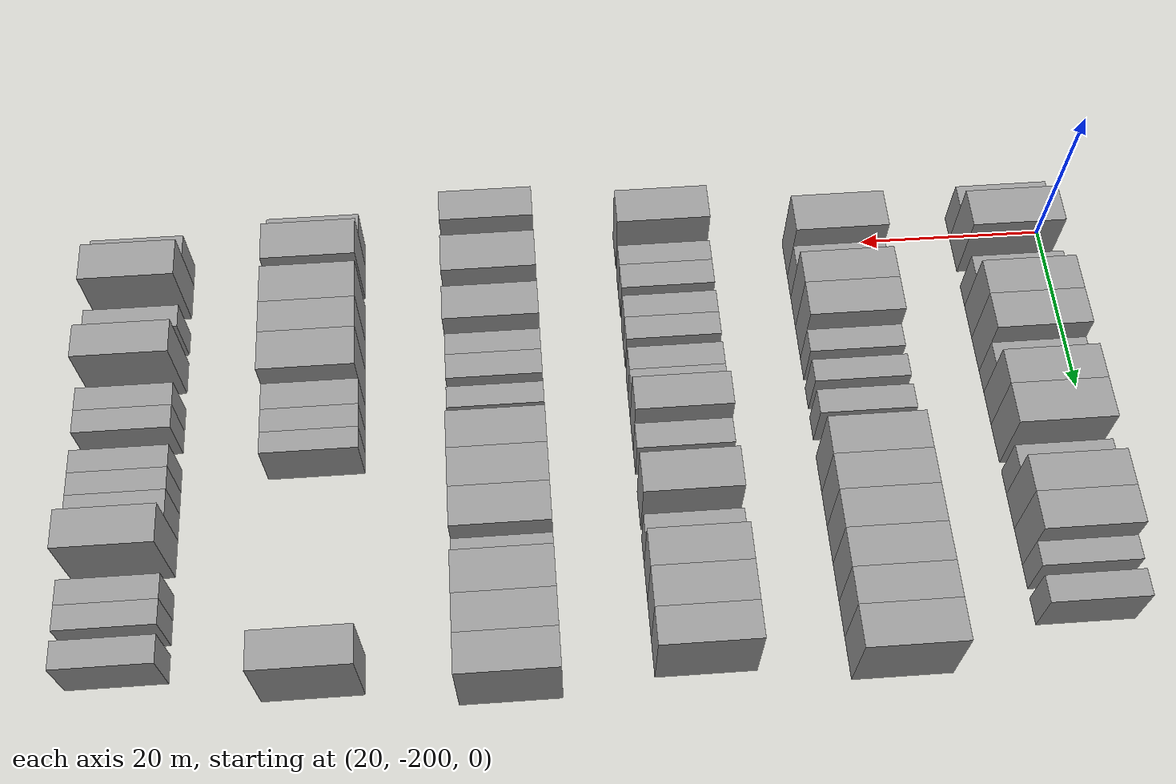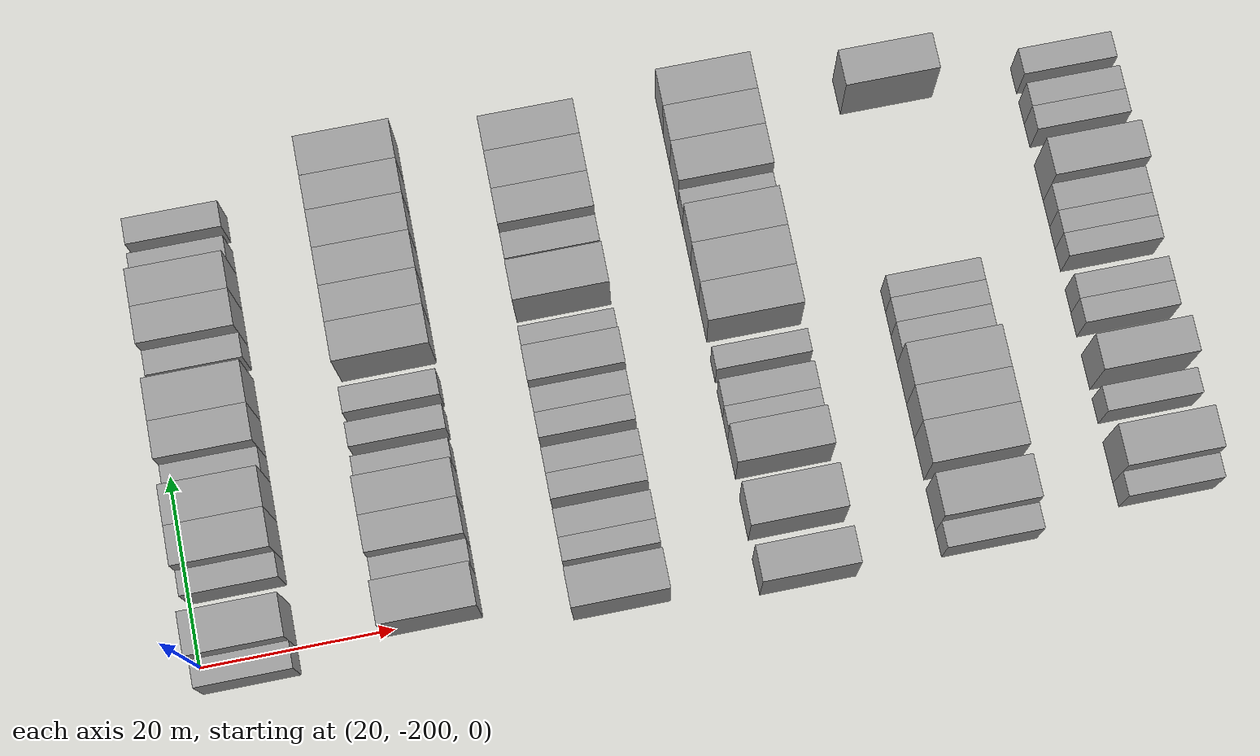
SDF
<sdf version="1.6">
 <world name="default">
  <model name="building_37">
   <static>1</static>
   <pose>25.0000 -201.2684 0 0.000000 0.000000 0.000000</pose>
   <link name="link">
    <pose>0 0 3.00 0 0 0</pose>
    <collision name="collision"><geometry><box><size>10.0000 2.8138 6.0000</size></box></geometry></collision>
    <visual name="visual">
     <cast_shadows>0</cast_shadows>
     <geometry><box><size>10.0000 2.8138 6.0000</size></box></geometry>
     <material>
      <script>
       <uri>model://grey_wall/materials/scripts</uri>
       <uri>model://grey_wall/materials/textures</uri>
       <name>vrc/grey_wall</name>
      </script>
     </material>
    </visual>
   </link>
  </model>
  <model name="building_38">
   <static>1</static>
   <pose>25.0000 -197.6301 0 0.000000 0.000000 0.000000</pose>
   <link name="link">
    <pose>0 0 4.50 0 0 0</pose>
    <collision name="collision"><geometry><box><size>10.0000 4.4629 9.0000</size></box></geometry></collision>
    <visual name="visual">
     <cast_shadows>0</cast_shadows>
     <geometry><box><size>10.0000 4.4629 9.0000</size></box></geometry>
     <material>
      <script>
       <uri>model://grey_wall/materials/scripts</uri>
       <uri>model://grey_wall/materials/textures</uri>
       <name>vrc/grey_wall</name>
      </script>
     </material>
    </visual>
   </link>
  </model>
  <model name="building_39">
   <static>1</static>
   <pose>25.0000 -192.0988 0 0.000000 0.000000 0.000000</pose>
   <link name="link">
    <pose>0 0 3.00 0 0 0</pose>
    <collision name="collision"><geometry><box><size>10.0000 2.5997 6.0000</size></box></geometry></collision>
    <visual name="visual">
     <cast_shadows>0</cast_shadows>
     <geometry><box><size>10.0000 2.5997 6.0000</size></box></geometry>
     <material>
      <script>
       <uri>model://grey_wall/materials/scripts</uri>
       <uri>model://grey_wall/materials/textures</uri>
       <name>vrc/grey_wall</name>
      </script>
     </material>
    </visual>
   </link>
  </model>
  <model name="building_40">
   <static>1</static>
   <pose>25.0000 -188.7515 0 0.000000 0.000000 0.000000</pose>
   <link name="link">
    <pose>0 0 4.50 0 0 0</pose>
    <collision name="collision"><geometry><box><size>10.0000 4.0948 9.0000</size></box></geometry></collision>
    <visual name="visual">
     <cast_shadows>0</cast_shadows>
     <geometry><box><size>10.0000 4.0948 9.0000</size></box></geometry>
     <material>
      <script>
       <uri>model://grey_wall/materials/scripts</uri>
       <uri>model://grey_wall/materials/textures</uri>
       <name>vrc/grey_wall</name>
      </script>
     </material>
    </visual>
   </link>
  </model>
  <model name="building_41">
   <static>1</static>
   <pose>25.0000 -184.6047 0 0.000000 0.000000 0.000000</pose>
   <link name="link">
    <pose>0 0 4.50 0 0 0</pose>
    <collision name="collision"><geometry><box><size>10.0000 4.1988 9.0000</size></box></geometry></collision>
    <visual name="visual">
     <cast_shadows>0</cast_shadows>
     <geometry><box><size>10.0000 4.1988 9.0000</size></box></geometry>
     <material>
      <script>
       <uri>model://grey_wall/materials/scripts</uri>
       <uri>model://grey_wall/materials/textures</uri>
       <name>vrc/grey_wall</name>
      </script>
     </material>
    </visual>
   </link>
  </model>
  <model name="building_42">
   <static>1</static>
   <pose>25.0000 -181.1895 0 0.000000 0.000000 0.000000</pose>
   <link name="link">
    <pose>0 0 3.00 0 0 0</pose>
    <collision name="collision"><geometry><box><size>10.0000 2.6315 6.0000</size></box></geometry></collision>
    <visual name="visual">
     <cast_shadows>0</cast_shadows>
     <geometry><box><size>10.0000 2.6315 6.0000</size></box></geometry>
     <material>
      <script>
       <uri>model://grey_wall/materials/scripts</uri>
       <uri>model://grey_wall/materials/textures</uri>
       <name>vrc/grey_wall</name>
      </script>
     </material>
    </visual>
   </link>
  </model>
  <model name="building_43">
   <static>1</static>
   <pose>25.0000 -177.9051 0 0.000000 0.000000 0.000000</pose>
   <link name="link">
    <pose>0 0 4.50 0 0 0</pose>
    <collision name="collision"><geometry><box><size>10.0000 3.9375 9.0000</size></box></geometry></collision>
    <visual name="visual">
     <cast_shadows>0</cast_shadows>
     <geometry><box><size>10.0000 3.9375 9.0000</size></box></geometry>
     <material>
      <script>
       <uri>model://grey_wall/materials/scripts</uri>
       <uri>model://grey_wall/materials/textures</uri>
       <name>vrc/grey_wall</name>
      </script>
     </material>
    </visual>
   </link>
  </model>
  <model name="building_44">
   <static>1</static>
   <pose>25.0000 -173.6956 0 0.000000 0.000000 0.000000</pose>
   <link name="link">
    <pose>0 0 4.50 0 0 0</pose>
    <collision name="collision"><geometry><box><size>10.0000 4.4815 9.0000</size></box></geometry></collision>
    <visual name="visual">
     <cast_shadows>0</cast_shadows>
     <geometry><box><size>10.0000 4.4815 9.0000</size></box></geometry>
     <material>
      <script>
       <uri>model://grey_wall/materials/scripts</uri>
       <uri>model://grey_wall/materials/textures</uri>
       <name>vrc/grey_wall</name>
      </script>
     </material>
    </visual>
   </link>
  </model>
  <model name="building_45">
   <static>1</static>
   <pose>25.0000 -169.1387 0 0.000000 0.000000 0.000000</pose>
   <link name="link">
    <pose>0 0 3.00 0 0 0</pose>
    <collision name="collision"><geometry><box><size>10.0000 2.6322 6.0000</size></box></geometry></collision>
    <visual name="visual">
     <cast_shadows>0</cast_shadows>
     <geometry><box><size>10.0000 2.6322 6.0000</size></box></geometry>
     <material>
      <script>
       <uri>model://grey_wall/materials/scripts</uri>
       <uri>model://grey_wall/materials/textures</uri>
       <name>vrc/grey_wall</name>
      </script>
     </material>
    </visual>
   </link>
  </model>
  <model name="building_46">
   <static>1</static>
   <pose>25.0000 -165.8523 0 0.000000 0.000000 0.000000</pose>
   <link name="link">
    <pose>0 0 4.50 0 0 0</pose>
    <collision name="collision"><geometry><box><size>10.0000 3.9406 9.0000</size></box></geometry></collision>
    <visual name="visual">
     <cast_shadows>0</cast_shadows>
     <geometry><box><size>10.0000 3.9406 9.0000</size></box></geometry>
     <material>
      <script>
       <uri>model://grey_wall/materials/scripts</uri>
       <uri>model://grey_wall/materials/textures</uri>
       <name>vrc/grey_wall</name>
      </script>
     </material>
    </visual>
   </link>
  </model>
  <model name="building_47">
   <static>1</static>
   <pose>25.0000 -161.8768 0 0.000000 0.000000 0.000000</pose>
   <link name="link">
    <pose>0 0 4.50 0 0 0</pose>
    <collision name="collision"><geometry><box><size>10.0000 4.0105 9.0000</size></box></geometry></collision>
    <visual name="visual">
     <cast_shadows>0</cast_shadows>
     <geometry><box><size>10.0000 4.0105 9.0000</size></box></geometry>
     <material>
      <script>
       <uri>model://grey_wall/materials/scripts</uri>
       <uri>model://grey_wall/materials/textures</uri>
       <name>vrc/grey_wall</name>
      </script>
     </material>
    </visual>
   </link>
  </model>
  <model name="building_48">
   <static>1</static>
   <pose>25.0000 -158.6008 0 0.000000 0.000000 0.000000</pose>
   <link name="link">
    <pose>0 0 3.00 0 0 0</pose>
    <collision name="collision"><geometry><box><size>10.0000 2.5414 6.0000</size></box></geometry></collision>
    <visual name="visual">
     <cast_shadows>0</cast_shadows>
     <geometry><box><size>10.0000 2.5414 6.0000</size></box></geometry>
     <material>
      <script>
       <uri>model://grey_wall/materials/scripts</uri>
       <uri>model://grey_wall/materials/textures</uri>
       <name>vrc/grey_wall</name>
      </script>
     </material>
    </visual>
   </link>
  </model>
  <model name="building_49">
   <static>1</static>
   <pose>25.0000 -154.9252 0 0.000000 0.000000 0.000000</pose>
   <link name="link">
    <pose>0 0 3.00 0 0 0</pose>
    <collision name="collision"><geometry><box><size>10.0000 2.8098 6.0000</size></box></geometry></collision>
    <visual name="visual">
     <cast_shadows>0</cast_shadows>
     <geometry><box><size>10.0000 2.8098 6.0000</size></box></geometry>
     <material>
      <script>
       <uri>model://grey_wall/materials/scripts</uri>
       <uri>model://grey_wall/materials/textures</uri>
       <name>vrc/grey_wall</name>
      </script>
     </material>
    </visual>
   </link>
  </model>
  <model name="building_213">
   <static>1</static>
   <pose>44.0000 -198.2995 0 0.000000 0.000000 0.000000</pose>
   <link name="link">
    <pose>0 0 4.50 0 0 0</pose>
    <collision name="collision"><geometry><box><size>10.0000 4.4724 9.0000</size></box></geometry></collision>
    <visual name="visual">
     <cast_shadows>0</cast_shadows>
     <geometry><box><size>10.0000 4.4724 9.0000</size></box></geometry>
     <material>
      <script>
       <uri>model://grey_wall/materials/scripts</uri>
       <uri>model://grey_wall/materials/textures</uri>
       <name>vrc/grey_wall</name>
      </script>
     </material>
    </visual>
   </link>
  </model>
  <model name="building_214">
   <static>1</static>
   <pose>44.0000 -194.6533 0 0.000000 0.000000 0.000000</pose>
   <link name="link">
    <pose>0 0 3.00 0 0 0</pose>
    <collision name="collision"><geometry><box><size>10.0000 2.8201 6.0000</size></box></geometry></collision>
    <visual name="visual">
     <cast_shadows>0</cast_shadows>
     <geometry><box><size>10.0000 2.8201 6.0000</size></box></geometry>
     <material>
      <script>
       <uri>model://grey_wall/materials/scripts</uri>
       <uri>model://grey_wall/materials/textures</uri>
       <name>vrc/grey_wall</name>
      </script>
     </material>
    </visual>
   </link>
  </model>
  <model name="building_215">
   <static>1</static>
   <pose>44.0000 -191.3345 0 0.000000 0.000000 0.000000</pose>
   <link name="link">
    <pose>0 0 4.50 0 0 0</pose>
    <collision name="collision"><geometry><box><size>10.0000 3.8174 9.0000</size></box></geometry></collision>
    <visual name="visual">
     <cast_shadows>0</cast_shadows>
     <geometry><box><size>10.0000 3.8174 9.0000</size></box></geometry>
     <material>
      <script>
       <uri>model://grey_wall/materials/scripts</uri>
       <uri>model://grey_wall/materials/textures</uri>
       <name>vrc/grey_wall</name>
      </script>
     </material>
    </visual>
   </link>
  </model>
  <model name="building_216">
   <static>1</static>
   <pose>44.0000 -187.4266 0 0.000000 0.000000 0.000000</pose>
   <link name="link">
    <pose>0 0 4.50 0 0 0</pose>
    <collision name="collision"><geometry><box><size>10.0000 3.9984 9.0000</size></box></geometry></collision>
    <visual name="visual">
     <cast_shadows>0</cast_shadows>
     <geometry><box><size>10.0000 3.9984 9.0000</size></box></geometry>
     <material>
      <script>
       <uri>model://grey_wall/materials/scripts</uri>
       <uri>model://grey_wall/materials/textures</uri>
       <name>vrc/grey_wall</name>
      </script>
     </material>
    </visual>
   </link>
  </model>
  <model name="building_217">
   <static>1</static>
   <pose>44.0000 -184.1020 0 0.000000 0.000000 0.000000</pose>
   <link name="link">
    <pose>0 0 3.00 0 0 0</pose>
    <collision name="collision"><geometry><box><size>10.0000 2.6508 6.0000</size></box></geometry></collision>
    <visual name="visual">
     <cast_shadows>0</cast_shadows>
     <geometry><box><size>10.0000 2.6508 6.0000</size></box></geometry>
     <material>
      <script>
       <uri>model://grey_wall/materials/scripts</uri>
       <uri>model://grey_wall/materials/textures</uri>
       <name>vrc/grey_wall</name>
      </script>
     </material>
    </visual>
   </link>
  </model>
  <model name="building_218">
   <static>1</static>
   <pose>44.0000 -180.4917 0 0.000000 0.000000 0.000000</pose>
   <link name="link">
    <pose>0 0 3.00 0 0 0</pose>
    <collision name="collision"><geometry><box><size>10.0000 2.5696 6.0000</size></box></geometry></collision>
    <visual name="visual">
     <cast_shadows>0</cast_shadows>
     <geometry><box><size>10.0000 2.5696 6.0000</size></box></geometry>
     <material>
      <script>
       <uri>model://grey_wall/materials/scripts</uri>
       <uri>model://grey_wall/materials/textures</uri>
       <name>vrc/grey_wall</name>
      </script>
     </material>
    </visual>
   </link>
  </model>
  <model name="building_219">
   <static>1</static>
   <pose>44.0000 -176.8438 0 0.000000 0.000000 0.000000</pose>
   <link name="link">
    <pose>0 0 3.00 0 0 0</pose>
    <collision name="collision"><geometry><box><size>10.0000 2.7263 6.0000</size></box></geometry></collision>
    <visual name="visual">
     <cast_shadows>0</cast_shadows>
     <geometry><box><size>10.0000 2.7263 6.0000</size></box></geometry>
     <material>
      <script>
       <uri>model://grey_wall/materials/scripts</uri>
       <uri>model://grey_wall/materials/textures</uri>
       <name>vrc/grey_wall</name>
      </script>
     </material>
    </visual>
   </link>
  </model>
  <model name="building_220">
   <static>1</static>
   <pose>44.0000 -171.3957 0 0.000000 0.000000 0.000000</pose>
   <link name="link">
    <pose>0 0 4.50 0 0 0</pose>
    <collision name="collision"><geometry><box><size>10.0000 4.1698 9.0000</size></box></geometry></collision>
    <visual name="visual">
     <cast_shadows>0</cast_shadows>
     <geometry><box><size>10.0000 4.1698 9.0000</size></box></geometry>
     <material>
      <script>
       <uri>model://grey_wall/materials/scripts</uri>
       <uri>model://grey_wall/materials/textures</uri>
       <name>vrc/grey_wall</name>
      </script>
     </material>
    </visual>
   </link>
  </model>
  <model name="building_221">
   <static>1</static>
   <pose>44.0000 -167.3789 0 0.000000 0.000000 0.000000</pose>
   <link name="link">
    <pose>0 0 4.50 0 0 0</pose>
    <collision name="collision"><geometry><box><size>10.0000 3.8640 9.0000</size></box></geometry></collision>
    <visual name="visual">
     <cast_shadows>0</cast_shadows>
     <geometry><box><size>10.0000 3.8640 9.0000</size></box></geometry>
     <material>
      <script>
       <uri>model://grey_wall/materials/scripts</uri>
       <uri>model://grey_wall/materials/textures</uri>
       <name>vrc/grey_wall</name>
      </script>
     </material>
    </visual>
   </link>
  </model>
  <model name="building_222">
   <static>1</static>
   <pose>44.0000 -163.4133 0 0.000000 0.000000 0.000000</pose>
   <link name="link">
    <pose>0 0 4.50 0 0 0</pose>
    <collision name="collision"><geometry><box><size>10.0000 4.0671 9.0000</size></box></geometry></collision>
    <visual name="visual">
     <cast_shadows>0</cast_shadows>
     <geometry><box><size>10.0000 4.0671 9.0000</size></box></geometry>
     <material>
      <script>
       <uri>model://grey_wall/materials/scripts</uri>
       <uri>model://grey_wall/materials/textures</uri>
       <name>vrc/grey_wall</name>
      </script>
     </material>
    </visual>
   </link>
  </model>
  <model name="building_223">
   <static>1</static>
   <pose>44.0000 -159.3458 0 0.000000 0.000000 0.000000</pose>
   <link name="link">
    <pose>0 0 4.50 0 0 0</pose>
    <collision name="collision"><geometry><box><size>10.0000 4.0679 9.0000</size></box></geometry></collision>
    <visual name="visual">
     <cast_shadows>0</cast_shadows>
     <geometry><box><size>10.0000 4.0679 9.0000</size></box></geometry>
     <material>
      <script>
       <uri>model://grey_wall/materials/scripts</uri>
       <uri>model://grey_wall/materials/textures</uri>
       <name>vrc/grey_wall</name>
      </script>
     </material>
    </visual>
   </link>
  </model>
  <model name="building_224">
   <static>1</static>
   <pose>44.0000 -155.4281 0 0.000000 0.000000 0.000000</pose>
   <link name="link">
    <pose>0 0 4.50 0 0 0</pose>
    <collision name="collision"><geometry><box><size>10.0000 3.7675 9.0000</size></box></geometry></collision>
    <visual name="visual">
     <cast_shadows>0</cast_shadows>
     <geometry><box><size>10.0000 3.7675 9.0000</size></box></geometry>
     <material>
      <script>
       <uri>model://grey_wall/materials/scripts</uri>
       <uri>model://grey_wall/materials/textures</uri>
       <name>vrc/grey_wall</name>
      </script>
     </material>
    </visual>
   </link>
  </model>
  <model name="building_225">
   <static>1</static>
   <pose>44.0000 -151.3949 0 0.000000 0.000000 0.000000</pose>
   <link name="link">
    <pose>0 0 4.50 0 0 0</pose>
    <collision name="collision"><geometry><box><size>10.0000 4.2988 9.0000</size></box></geometry></collision>
    <visual name="visual">
     <cast_shadows>0</cast_shadows>
     <geometry><box><size>10.0000 4.2988 9.0000</size></box></geometry>
     <material>
      <script>
       <uri>model://grey_wall/materials/scripts</uri>
       <uri>model://grey_wall/materials/textures</uri>
       <name>vrc/grey_wall</name>
      </script>
     </material>
    </visual>
   </link>
  </model>
  <model name="building_388">
   <static>1</static>
   <pose>63.0000 -200.5360 0 0.000000 0.000000 0.000000</pose>
   <link name="link">
    <pose>0 0 4.50 0 0 0</pose>
    <collision name="collision"><geometry><box><size>10.0000 4.1398 9.0000</size></box></geometry></collision>
    <visual name="visual">
     <cast_shadows>0</cast_shadows>
     <geometry><box><size>10.0000 4.1398 9.0000</size></box></geometry>
     <material>
      <script>
       <uri>model://grey_wall/materials/scripts</uri>
       <uri>model://grey_wall/materials/textures</uri>
       <name>vrc/grey_wall</name>
      </script>
     </material>
    </visual>
   </link>
  </model>
  <model name="building_389">
   <static>1</static>
   <pose>63.0000 -196.2243 0 0.000000 0.000000 0.000000</pose>
   <link name="link">
    <pose>0 0 3.00 0 0 0</pose>
    <collision name="collision"><geometry><box><size>10.0000 2.4836 6.0000</size></box></geometry></collision>
    <visual name="visual">
     <cast_shadows>0</cast_shadows>
     <geometry><box><size>10.0000 2.4836 6.0000</size></box></geometry>
     <material>
      <script>
       <uri>model://grey_wall/materials/scripts</uri>
       <uri>model://grey_wall/materials/textures</uri>
       <name>vrc/grey_wall</name>
      </script>
     </material>
    </visual>
   </link>
  </model>
  <model name="building_390">
   <static>1</static>
   <pose>63.0000 -193.5029 0 0.000000 0.000000 0.000000</pose>
   <link name="link">
    <pose>0 0 3.00 0 0 0</pose>
    <collision name="collision"><geometry><box><size>10.0000 2.9592 6.0000</size></box></geometry></collision>
    <visual name="visual">
     <cast_shadows>0</cast_shadows>
     <geometry><box><size>10.0000 2.9592 6.0000</size></box></geometry>
     <material>
      <script>
       <uri>model://grey_wall/materials/scripts</uri>
       <uri>model://grey_wall/materials/textures</uri>
       <name>vrc/grey_wall</name>
      </script>
     </material>
    </visual>
   </link>
  </model>
  <model name="building_391">
   <static>1</static>
   <pose>63.0000 -189.6736 0 0.000000 0.000000 0.000000</pose>
   <link name="link">
    <pose>0 0 3.00 0 0 0</pose>
    <collision name="collision"><geometry><box><size>10.0000 2.6993 6.0000</size></box></geometry></collision>
    <visual name="visual">
     <cast_shadows>0</cast_shadows>
     <geometry><box><size>10.0000 2.6993 6.0000</size></box></geometry>
     <material>
      <script>
       <uri>model://grey_wall/materials/scripts</uri>
       <uri>model://grey_wall/materials/textures</uri>
       <name>vrc/grey_wall</name>
      </script>
     </material>
    </visual>
   </link>
  </model>
  <model name="building_392">
   <static>1</static>
   <pose>63.0000 -186.9709 0 0.000000 0.000000 0.000000</pose>
   <link name="link">
    <pose>0 0 3.00 0 0 0</pose>
    <collision name="collision"><geometry><box><size>10.0000 2.7061 6.0000</size></box></geometry></collision>
    <visual name="visual">
     <cast_shadows>0</cast_shadows>
     <geometry><box><size>10.0000 2.7061 6.0000</size></box></geometry>
     <material>
      <script>
       <uri>model://grey_wall/materials/scripts</uri>
       <uri>model://grey_wall/materials/textures</uri>
       <name>vrc/grey_wall</name>
      </script>
     </material>
    </visual>
   </link>
  </model>
  <model name="building_393">
   <static>1</static>
   <pose>63.0000 -183.2868 0 0.000000 0.000000 0.000000</pose>
   <link name="link">
    <pose>0 0 3.00 0 0 0</pose>
    <collision name="collision"><geometry><box><size>10.0000 2.6621 6.0000</size></box></geometry></collision>
    <visual name="visual">
     <cast_shadows>0</cast_shadows>
     <geometry><box><size>10.0000 2.6621 6.0000</size></box></geometry>
     <material>
      <script>
       <uri>model://grey_wall/materials/scripts</uri>
       <uri>model://grey_wall/materials/textures</uri>
       <name>vrc/grey_wall</name>
      </script>
     </material>
    </visual>
   </link>
  </model>
  <model name="building_394">
   <static>1</static>
   <pose>63.0000 -180.6456 0 0.000000 0.000000 0.000000</pose>
   <link name="link">
    <pose>0 0 3.00 0 0 0</pose>
    <collision name="collision"><geometry><box><size>10.0000 2.6202 6.0000</size></box></geometry></collision>
    <visual name="visual">
     <cast_shadows>0</cast_shadows>
     <geometry><box><size>10.0000 2.6202 6.0000</size></box></geometry>
     <material>
      <script>
       <uri>model://grey_wall/materials/scripts</uri>
       <uri>model://grey_wall/materials/textures</uri>
       <name>vrc/grey_wall</name>
      </script>
     </material>
    </visual>
   </link>
  </model>
  <model name="building_395">
   <static>1</static>
   <pose>63.0000 -177.4689 0 0.000000 0.000000 0.000000</pose>
   <link name="link">
    <pose>0 0 4.50 0 0 0</pose>
    <collision name="collision"><geometry><box><size>10.0000 3.7332 9.0000</size></box></geometry></collision>
    <visual name="visual">
     <cast_shadows>0</cast_shadows>
     <geometry><box><size>10.0000 3.7332 9.0000</size></box></geometry>
     <material>
      <script>
       <uri>model://grey_wall/materials/scripts</uri>
       <uri>model://grey_wall/materials/textures</uri>
       <name>vrc/grey_wall</name>
      </script>
     </material>
    </visual>
   </link>
  </model>
  <model name="building_396">
   <static>1</static>
   <pose>63.0000 -174.1981 0 0.000000 0.000000 0.000000</pose>
   <link name="link">
    <pose>0 0 3.00 0 0 0</pose>
    <collision name="collision"><geometry><box><size>10.0000 2.8084 6.0000</size></box></geometry></collision>
    <visual name="visual">
     <cast_shadows>0</cast_shadows>
     <geometry><box><size>10.0000 2.8084 6.0000</size></box></geometry>
     <material>
      <script>
       <uri>model://grey_wall/materials/scripts</uri>
       <uri>model://grey_wall/materials/textures</uri>
       <name>vrc/grey_wall</name>
      </script>
     </material>
    </visual>
   </link>
  </model>
  <model name="building_397">
   <static>1</static>
   <pose>63.0000 -168.6347 0 0.000000 0.000000 0.000000</pose>
   <link name="link">
    <pose>0 0 4.50 0 0 0</pose>
    <collision name="collision"><geometry><box><size>10.0000 4.3183 9.0000</size></box></geometry></collision>
    <visual name="visual">
     <cast_shadows>0</cast_shadows>
     <geometry><box><size>10.0000 4.3183 9.0000</size></box></geometry>
     <material>
      <script>
       <uri>model://grey_wall/materials/scripts</uri>
       <uri>model://grey_wall/materials/textures</uri>
       <name>vrc/grey_wall</name>
      </script>
     </material>
    </visual>
   </link>
  </model>
  <model name="building_398">
   <static>1</static>
   <pose>63.0000 -164.0449 0 0.000000 0.000000 0.000000</pose>
   <link name="link">
    <pose>0 0 3.00 0 0 0</pose>
    <collision name="collision"><geometry><box><size>10.0000 2.8614 6.0000</size></box></geometry></collision>
    <visual name="visual">
     <cast_shadows>0</cast_shadows>
     <geometry><box><size>10.0000 2.8614 6.0000</size></box></geometry>
     <material>
      <script>
       <uri>model://grey_wall/materials/scripts</uri>
       <uri>model://grey_wall/materials/textures</uri>
       <name>vrc/grey_wall</name>
      </script>
     </material>
    </visual>
   </link>
  </model>
  <model name="building_399">
   <static>1</static>
   <pose>63.0000 -160.6847 0 0.000000 0.000000 0.000000</pose>
   <link name="link">
    <pose>0 0 4.50 0 0 0</pose>
    <collision name="collision"><geometry><box><size>10.0000 3.8591 9.0000</size></box></geometry></collision>
    <visual name="visual">
     <cast_shadows>0</cast_shadows>
     <geometry><box><size>10.0000 3.8591 9.0000</size></box></geometry>
     <material>
      <script>
       <uri>model://grey_wall/materials/scripts</uri>
       <uri>model://grey_wall/materials/textures</uri>
       <name>vrc/grey_wall</name>
      </script>
     </material>
    </visual>
   </link>
  </model>
  <model name="building_400">
   <static>1</static>
   <pose>63.0000 -156.7003 0 0.000000 0.000000 0.000000</pose>
   <link name="link">
    <pose>0 0 4.50 0 0 0</pose>
    <collision name="collision"><geometry><box><size>10.0000 4.1096 9.0000</size></box></geometry></collision>
    <visual name="visual">
     <cast_shadows>0</cast_shadows>
     <geometry><box><size>10.0000 4.1096 9.0000</size></box></geometry>
     <material>
      <script>
       <uri>model://grey_wall/materials/scripts</uri>
       <uri>model://grey_wall/materials/textures</uri>
       <name>vrc/grey_wall</name>
      </script>
     </material>
    </visual>
   </link>
  </model>
  <model name="building_401">
   <static>1</static>
   <pose>63.0000 -152.7359 0 0.000000 0.000000 0.000000</pose>
   <link name="link">
    <pose>0 0 4.50 0 0 0</pose>
    <collision name="collision"><geometry><box><size>10.0000 3.8193 9.0000</size></box></geometry></collision>
    <visual name="visual">
     <cast_shadows>0</cast_shadows>
     <geometry><box><size>10.0000 3.8193 9.0000</size></box></geometry>
     <material>
      <script>
       <uri>model://grey_wall/materials/scripts</uri>
       <uri>model://grey_wall/materials/textures</uri>
       <name>vrc/grey_wall</name>
      </script>
     </material>
    </visual>
   </link>
  </model>
  <model name="building_563">
   <static>1</static>
   <pose>82.0000 -201.9273 0 0.000000 0.000000 0.000000</pose>
   <link name="link">
    <pose>0 0 4.50 0 0 0</pose>
    <collision name="collision"><geometry><box><size>10.0000 3.7375 9.0000</size></box></geometry></collision>
    <visual name="visual">
     <cast_shadows>0</cast_shadows>
     <geometry><box><size>10.0000 3.7375 9.0000</size></box></geometry>
     <material>
      <script>
       <uri>model://grey_wall/materials/scripts</uri>
       <uri>model://grey_wall/materials/textures</uri>
       <name>vrc/grey_wall</name>
      </script>
     </material>
    </visual>
   </link>
  </model>
  <model name="building_564">
   <static>1</static>
   <pose>82.0000 -195.8208 0 0.000000 0.000000 0.000000</pose>
   <link name="link">
    <pose>0 0 4.50 0 0 0</pose>
    <collision name="collision"><geometry><box><size>10.0000 4.4755 9.0000</size></box></geometry></collision>
    <visual name="visual">
     <cast_shadows>0</cast_shadows>
     <geometry><box><size>10.0000 4.4755 9.0000</size></box></geometry>
     <material>
      <script>
       <uri>model://grey_wall/materials/scripts</uri>
       <uri>model://grey_wall/materials/textures</uri>
       <name>vrc/grey_wall</name>
      </script>
     </material>
    </visual>
   </link>
  </model>
  <model name="building_565">
   <static>1</static>
   <pose>82.0000 -189.5889 0 0.000000 0.000000 0.000000</pose>
   <link name="link">
    <pose>0 0 4.50 0 0 0</pose>
    <collision name="collision"><geometry><box><size>10.0000 3.9884 9.0000</size></box></geometry></collision>
    <visual name="visual">
     <cast_shadows>0</cast_shadows>
     <geometry><box><size>10.0000 3.9884 9.0000</size></box></geometry>
     <material>
      <script>
       <uri>model://grey_wall/materials/scripts</uri>
       <uri>model://grey_wall/materials/textures</uri>
       <name>vrc/grey_wall</name>
      </script>
     </material>
    </visual>
   </link>
  </model>
  <model name="building_566">
   <static>1</static>
   <pose>82.0000 -186.3417 0 0.000000 0.000000 0.000000</pose>
   <link name="link">
    <pose>0 0 3.00 0 0 0</pose>
    <collision name="collision"><geometry><box><size>10.0000 2.5060 6.0000</size></box></geometry></collision>
    <visual name="visual">
     <cast_shadows>0</cast_shadows>
     <geometry><box><size>10.0000 2.5060 6.0000</size></box></geometry>
     <material>
      <script>
       <uri>model://grey_wall/materials/scripts</uri>
       <uri>model://grey_wall/materials/textures</uri>
       <name>vrc/grey_wall</name>
      </script>
     </material>
    </visual>
   </link>
  </model>
  <model name="building_567">
   <static>1</static>
   <pose>82.0000 -183.6561 0 0.000000 0.000000 0.000000</pose>
   <link name="link">
    <pose>0 0 3.00 0 0 0</pose>
    <collision name="collision"><geometry><box><size>10.0000 2.8654 6.0000</size></box></geometry></collision>
    <visual name="visual">
     <cast_shadows>0</cast_shadows>
     <geometry><box><size>10.0000 2.8654 6.0000</size></box></geometry>
     <material>
      <script>
       <uri>model://grey_wall/materials/scripts</uri>
       <uri>model://grey_wall/materials/textures</uri>
       <name>vrc/grey_wall</name>
      </script>
     </material>
    </visual>
   </link>
  </model>
  <model name="building_568">
   <static>1</static>
   <pose>82.0000 -179.9999 0 0.000000 0.000000 0.000000</pose>
   <link name="link">
    <pose>0 0 3.00 0 0 0</pose>
    <collision name="collision"><geometry><box><size>10.0000 2.4469 6.0000</size></box></geometry></collision>
    <visual name="visual">
     <cast_shadows>0</cast_shadows>
     <geometry><box><size>10.0000 2.4469 6.0000</size></box></geometry>
     <material>
      <script>
       <uri>model://grey_wall/materials/scripts</uri>
       <uri>model://grey_wall/materials/textures</uri>
       <name>vrc/grey_wall</name>
      </script>
     </material>
    </visual>
   </link>
  </model>
  <model name="building_569">
   <static>1</static>
   <pose>82.0000 -174.7113 0 0.000000 0.000000 0.000000</pose>
   <link name="link">
    <pose>0 0 4.50 0 0 0</pose>
    <collision name="collision"><geometry><box><size>10.0000 4.1304 9.0000</size></box></geometry></collision>
    <visual name="visual">
     <cast_shadows>0</cast_shadows>
     <geometry><box><size>10.0000 4.1304 9.0000</size></box></geometry>
     <material>
      <script>
       <uri>model://grey_wall/materials/scripts</uri>
       <uri>model://grey_wall/materials/textures</uri>
       <name>vrc/grey_wall</name>
      </script>
     </material>
    </visual>
   </link>
  </model>
  <model name="building_570">
   <static>1</static>
   <pose>82.0000 -170.5324 0 0.000000 0.000000 0.000000</pose>
   <link name="link">
    <pose>0 0 4.50 0 0 0</pose>
    <collision name="collision"><geometry><box><size>10.0000 4.2274 9.0000</size></box></geometry></collision>
    <visual name="visual">
     <cast_shadows>0</cast_shadows>
     <geometry><box><size>10.0000 4.2274 9.0000</size></box></geometry>
     <material>
      <script>
       <uri>model://grey_wall/materials/scripts</uri>
       <uri>model://grey_wall/materials/textures</uri>
       <name>vrc/grey_wall</name>
      </script>
     </material>
    </visual>
   </link>
  </model>
  <model name="building_571">
   <static>1</static>
   <pose>82.0000 -166.3109 0 0.000000 0.000000 0.000000</pose>
   <link name="link">
    <pose>0 0 4.50 0 0 0</pose>
    <collision name="collision"><geometry><box><size>10.0000 4.2156 9.0000</size></box></geometry></collision>
    <visual name="visual">
     <cast_shadows>0</cast_shadows>
     <geometry><box><size>10.0000 4.2156 9.0000</size></box></geometry>
     <material>
      <script>
       <uri>model://grey_wall/materials/scripts</uri>
       <uri>model://grey_wall/materials/textures</uri>
       <name>vrc/grey_wall</name>
      </script>
     </material>
    </visual>
   </link>
  </model>
  <model name="building_572">
   <static>1</static>
   <pose>82.0000 -162.9552 0 0.000000 0.000000 0.000000</pose>
   <link name="link">
    <pose>0 0 3.00 0 0 0</pose>
    <collision name="collision"><geometry><box><size>10.0000 2.4959 6.0000</size></box></geometry></collision>
    <visual name="visual">
     <cast_shadows>0</cast_shadows>
     <geometry><box><size>10.0000 2.4959 6.0000</size></box></geometry>
     <material>
      <script>
       <uri>model://grey_wall/materials/scripts</uri>
       <uri>model://grey_wall/materials/textures</uri>
       <name>vrc/grey_wall</name>
      </script>
     </material>
    </visual>
   </link>
  </model>
  <model name="building_573">
   <static>1</static>
   <pose>82.0000 -159.5243 0 0.000000 0.000000 0.000000</pose>
   <link name="link">
    <pose>0 0 4.50 0 0 0</pose>
    <collision name="collision"><geometry><box><size>10.0000 4.3659 9.0000</size></box></geometry></collision>
    <visual name="visual">
     <cast_shadows>0</cast_shadows>
     <geometry><box><size>10.0000 4.3659 9.0000</size></box></geometry>
     <material>
      <script>
       <uri>model://grey_wall/materials/scripts</uri>
       <uri>model://grey_wall/materials/textures</uri>
       <name>vrc/grey_wall</name>
      </script>
     </material>
    </visual>
   </link>
  </model>
  <model name="building_574">
   <static>1</static>
   <pose>82.0000 -155.3873 0 0.000000 0.000000 0.000000</pose>
   <link name="link">
    <pose>0 0 4.50 0 0 0</pose>
    <collision name="collision"><geometry><box><size>10.0000 3.9081 9.0000</size></box></geometry></collision>
    <visual name="visual">
     <cast_shadows>0</cast_shadows>
     <geometry><box><size>10.0000 3.9081 9.0000</size></box></geometry>
     <material>
      <script>
       <uri>model://grey_wall/materials/scripts</uri>
       <uri>model://grey_wall/materials/textures</uri>
       <name>vrc/grey_wall</name>
      </script>
     </material>
    </visual>
   </link>
  </model>
  <model name="building_575">
   <static>1</static>
   <pose>82.0000 -151.4127 0 0.000000 0.000000 0.000000</pose>
   <link name="link">
    <pose>0 0 4.50 0 0 0</pose>
    <collision name="collision"><geometry><box><size>10.0000 4.0412 9.0000</size></box></geometry></collision>
    <visual name="visual">
     <cast_shadows>0</cast_shadows>
     <geometry><box><size>10.0000 4.0412 9.0000</size></box></geometry>
     <material>
      <script>
       <uri>model://grey_wall/materials/scripts</uri>
       <uri>model://grey_wall/materials/textures</uri>
       <name>vrc/grey_wall</name>
      </script>
     </material>
    </visual>
   </link>
  </model>
  <model name="building_733">
   <static>1</static>
   <pose>101.0000 -202.2657 0 0.000000 0.000000 0.000000</pose>
   <link name="link">
    <pose>0 0 3.00 0 0 0</pose>
    <collision name="collision"><geometry><box><size>10.0000 2.7144 6.0000</size></box></geometry></collision>
    <visual name="visual">
     <cast_shadows>0</cast_shadows>
     <geometry><box><size>10.0000 2.7144 6.0000</size></box></geometry>
     <material>
      <script>
       <uri>model://grey_wall/materials/scripts</uri>
       <uri>model://grey_wall/materials/textures</uri>
       <name>vrc/grey_wall</name>
      </script>
     </material>
    </visual>
   </link>
  </model>
  <model name="building_734">
   <static>1</static>
   <pose>101.0000 -198.6866 0 0.000000 0.000000 0.000000</pose>
   <link name="link">
    <pose>0 0 4.50 0 0 0</pose>
    <collision name="collision"><geometry><box><size>10.0000 4.4439 9.0000</size></box></geometry></collision>
    <visual name="visual">
     <cast_shadows>0</cast_shadows>
     <geometry><box><size>10.0000 4.4439 9.0000</size></box></geometry>
     <material>
      <script>
       <uri>model://grey_wall/materials/scripts</uri>
       <uri>model://grey_wall/materials/textures</uri>
       <name>vrc/grey_wall</name>
      </script>
     </material>
    </visual>
   </link>
  </model>
  <model name="building_735">
   <static>1</static>
   <pose>101.0000 -193.2550 0 0.000000 0.000000 0.000000</pose>
   <link name="link">
    <pose>0 0 4.50 0 0 0</pose>
    <collision name="collision"><geometry><box><size>10.0000 4.4194 9.0000</size></box></geometry></collision>
    <visual name="visual">
     <cast_shadows>0</cast_shadows>
     <geometry><box><size>10.0000 4.4194 9.0000</size></box></geometry>
     <material>
      <script>
       <uri>model://grey_wall/materials/scripts</uri>
       <uri>model://grey_wall/materials/textures</uri>
       <name>vrc/grey_wall</name>
      </script>
     </material>
    </visual>
   </link>
  </model>
  <model name="building_736">
   <static>1</static>
   <pose>101.0000 -189.2058 0 0.000000 0.000000 0.000000</pose>
   <link name="link">
    <pose>0 0 4.50 0 0 0</pose>
    <collision name="collision"><geometry><box><size>10.0000 3.6789 9.0000</size></box></geometry></collision>
    <visual name="visual">
     <cast_shadows>0</cast_shadows>
     <geometry><box><size>10.0000 3.6789 9.0000</size></box></geometry>
     <material>
      <script>
       <uri>model://grey_wall/materials/scripts</uri>
       <uri>model://grey_wall/materials/textures</uri>
       <name>vrc/grey_wall</name>
      </script>
     </material>
    </visual>
   </link>
  </model>
  <model name="building_737">
   <static>1</static>
   <pose>101.0000 -185.1418 0 0.000000 0.000000 0.000000</pose>
   <link name="link">
    <pose>0 0 4.50 0 0 0</pose>
    <collision name="collision"><geometry><box><size>10.0000 4.4492 9.0000</size></box></geometry></collision>
    <visual name="visual">
     <cast_shadows>0</cast_shadows>
     <geometry><box><size>10.0000 4.4492 9.0000</size></box></geometry>
     <material>
      <script>
       <uri>model://grey_wall/materials/scripts</uri>
       <uri>model://grey_wall/materials/textures</uri>
       <name>vrc/grey_wall</name>
      </script>
     </material>
    </visual>
   </link>
  </model>
  <model name="building_738">
   <static>1</static>
   <pose>101.0000 -181.4185 0 0.000000 0.000000 0.000000</pose>
   <link name="link">
    <pose>0 0 3.00 0 0 0</pose>
    <collision name="collision"><geometry><box><size>10.0000 2.9974 6.0000</size></box></geometry></collision>
    <visual name="visual">
     <cast_shadows>0</cast_shadows>
     <geometry><box><size>10.0000 2.9974 6.0000</size></box></geometry>
     <material>
      <script>
       <uri>model://grey_wall/materials/scripts</uri>
       <uri>model://grey_wall/materials/textures</uri>
       <name>vrc/grey_wall</name>
      </script>
     </material>
    </visual>
   </link>
  </model>
  <model name="building_739">
   <static>1</static>
   <pose>101.0000 -178.6067 0 0.000000 0.000000 0.000000</pose>
   <link name="link">
    <pose>0 0 3.00 0 0 0</pose>
    <collision name="collision"><geometry><box><size>10.0000 2.6262 6.0000</size></box></geometry></collision>
    <visual name="visual">
     <cast_shadows>0</cast_shadows>
     <geometry><box><size>10.0000 2.6262 6.0000</size></box></geometry>
     <material>
      <script>
       <uri>model://grey_wall/materials/scripts</uri>
       <uri>model://grey_wall/materials/textures</uri>
       <name>vrc/grey_wall</name>
      </script>
     </material>
    </visual>
   </link>
  </model>
  <model name="building_740">
   <static>1</static>
   <pose>101.0000 -176.0919 0 0.000000 0.000000 0.000000</pose>
   <link name="link">
    <pose>0 0 3.00 0 0 0</pose>
    <collision name="collision"><geometry><box><size>10.0000 2.4033 6.0000</size></box></geometry></collision>
    <visual name="visual">
     <cast_shadows>0</cast_shadows>
     <geometry><box><size>10.0000 2.4033 6.0000</size></box></geometry>
     <material>
      <script>
       <uri>model://grey_wall/materials/scripts</uri>
       <uri>model://grey_wall/materials/textures</uri>
       <name>vrc/grey_wall</name>
      </script>
     </material>
    </visual>
   </link>
  </model>
  <model name="building_741">
   <static>1</static>
   <pose>101.0000 -153.0102 0 0.000000 0.000000 0.000000</pose>
   <link name="link">
    <pose>0 0 4.50 0 0 0</pose>
    <collision name="collision"><geometry><box><size>10.0000 3.9201 9.0000</size></box></geometry></collision>
    <visual name="visual">
     <cast_shadows>0</cast_shadows>
     <geometry><box><size>10.0000 3.9201 9.0000</size></box></geometry>
     <material>
      <script>
       <uri>model://grey_wall/materials/scripts</uri>
       <uri>model://grey_wall/materials/textures</uri>
       <name>vrc/grey_wall</name>
      </script>
     </material>
    </visual>
   </link>
  </model>
  <model name="building_911">
   <static>1</static>
   <pose>120.0000 -200.8216 0 0.000000 0.000000 0.000000</pose>
   <link name="link">
    <pose>0 0 3.00 0 0 0</pose>
    <collision name="collision"><geometry><box><size>10.0000 2.5779 6.0000</size></box></geometry></collision>
    <visual name="visual">
     <cast_shadows>0</cast_shadows>
     <geometry><box><size>10.0000 2.5779 6.0000</size></box></geometry>
     <material>
      <script>
       <uri>model://grey_wall/materials/scripts</uri>
       <uri>model://grey_wall/materials/textures</uri>
       <name>vrc/grey_wall</name>
      </script>
     </material>
    </visual>
   </link>
  </model>
  <model name="building_912">
   <static>1</static>
   <pose>120.0000 -197.3666 0 0.000000 0.000000 0.000000</pose>
   <link name="link">
    <pose>0 0 4.50 0 0 0</pose>
    <collision name="collision"><geometry><box><size>10.0000 4.3322 9.0000</size></box></geometry></collision>
    <visual name="visual">
     <cast_shadows>0</cast_shadows>
     <geometry><box><size>10.0000 4.3322 9.0000</size></box></geometry>
     <material>
      <script>
       <uri>model://grey_wall/materials/scripts</uri>
       <uri>model://grey_wall/materials/textures</uri>
       <name>vrc/grey_wall</name>
      </script>
     </material>
    </visual>
   </link>
  </model>
  <model name="building_913">
   <static>1</static>
   <pose>120.0000 -191.8602 0 0.000000 0.000000 0.000000</pose>
   <link name="link">
    <pose>0 0 3.00 0 0 0</pose>
    <collision name="collision"><geometry><box><size>10.0000 2.6805 6.0000</size></box></geometry></collision>
    <visual name="visual">
     <cast_shadows>0</cast_shadows>
     <geometry><box><size>10.0000 2.6805 6.0000</size></box></geometry>
     <material>
      <script>
       <uri>model://grey_wall/materials/scripts</uri>
       <uri>model://grey_wall/materials/textures</uri>
       <name>vrc/grey_wall</name>
      </script>
     </material>
    </visual>
   </link>
  </model>
  <model name="building_914">
   <static>1</static>
   <pose>120.0000 -187.6414 0 0.000000 0.000000 0.000000</pose>
   <link name="link">
    <pose>0 0 4.50 0 0 0</pose>
    <collision name="collision"><geometry><box><size>10.0000 3.7572 9.0000</size></box></geometry></collision>
    <visual name="visual">
     <cast_shadows>0</cast_shadows>
     <geometry><box><size>10.0000 3.7572 9.0000</size></box></geometry>
     <material>
      <script>
       <uri>model://grey_wall/materials/scripts</uri>
       <uri>model://grey_wall/materials/textures</uri>
       <name>vrc/grey_wall</name>
      </script>
     </material>
    </visual>
   </link>
  </model>
  <model name="building_915">
   <static>1</static>
   <pose>120.0000 -182.4574 0 0.000000 0.000000 0.000000</pose>
   <link name="link">
    <pose>0 0 3.00 0 0 0</pose>
    <collision name="collision"><geometry><box><size>10.0000 2.6108 6.0000</size></box></geometry></collision>
    <visual name="visual">
     <cast_shadows>0</cast_shadows>
     <geometry><box><size>10.0000 2.6108 6.0000</size></box></geometry>
     <material>
      <script>
       <uri>model://grey_wall/materials/scripts</uri>
       <uri>model://grey_wall/materials/textures</uri>
       <name>vrc/grey_wall</name>
      </script>
     </material>
    </visual>
   </link>
  </model>
  <model name="building_916">
   <static>1</static>
   <pose>120.0000 -179.8548 0 0.000000 0.000000 0.000000</pose>
   <link name="link">
    <pose>0 0 3.00 0 0 0</pose>
    <collision name="collision"><geometry><box><size>10.0000 2.5943 6.0000</size></box></geometry></collision>
    <visual name="visual">
     <cast_shadows>0</cast_shadows>
     <geometry><box><size>10.0000 2.5943 6.0000</size></box></geometry>
     <material>
      <script>
       <uri>model://grey_wall/materials/scripts</uri>
       <uri>model://grey_wall/materials/textures</uri>
       <name>vrc/grey_wall</name>
      </script>
     </material>
    </visual>
   </link>
  </model>
  <model name="building_917">
   <static>1</static>
   <pose>120.0000 -175.3053 0 0.000000 0.000000 0.000000</pose>
   <link name="link">
    <pose>0 0 3.00 0 0 0</pose>
    <collision name="collision"><geometry><box><size>10.0000 2.5047 6.0000</size></box></geometry></collision>
    <visual name="visual">
     <cast_shadows>0</cast_shadows>
     <geometry><box><size>10.0000 2.5047 6.0000</size></box></geometry>
     <material>
      <script>
       <uri>model://grey_wall/materials/scripts</uri>
       <uri>model://grey_wall/materials/textures</uri>
       <name>vrc/grey_wall</name>
      </script>
     </material>
    </visual>
   </link>
  </model>
  <model name="building_918">
   <static>1</static>
   <pose>120.0000 -172.8109 0 0.000000 0.000000 0.000000</pose>
   <link name="link">
    <pose>0 0 3.00 0 0 0</pose>
    <collision name="collision"><geometry><box><size>10.0000 2.4841 6.0000</size></box></geometry></collision>
    <visual name="visual">
     <cast_shadows>0</cast_shadows>
     <geometry><box><size>10.0000 2.4841 6.0000</size></box></geometry>
     <material>
      <script>
       <uri>model://grey_wall/materials/scripts</uri>
       <uri>model://grey_wall/materials/textures</uri>
       <name>vrc/grey_wall</name>
      </script>
     </material>
    </visual>
   </link>
  </model>
  <model name="building_919">
   <static>1</static>
   <pose>120.0000 -170.1027 0 0.000000 0.000000 0.000000</pose>
   <link name="link">
    <pose>0 0 3.00 0 0 0</pose>
    <collision name="collision"><geometry><box><size>10.0000 2.9324 6.0000</size></box></geometry></collision>
    <visual name="visual">
     <cast_shadows>0</cast_shadows>
     <geometry><box><size>10.0000 2.9324 6.0000</size></box></geometry>
     <material>
      <script>
       <uri>model://grey_wall/materials/scripts</uri>
       <uri>model://grey_wall/materials/textures</uri>
       <name>vrc/grey_wall</name>
      </script>
     </material>
    </visual>
   </link>
  </model>
  <model name="building_920">
   <static>1</static>
   <pose>120.0000 -166.6044 0 0.000000 0.000000 0.000000</pose>
   <link name="link">
    <pose>0 0 4.50 0 0 0</pose>
    <collision name="collision"><geometry><box><size>10.0000 4.0642 9.0000</size></box></geometry></collision>
    <visual name="visual">
     <cast_shadows>0</cast_shadows>
     <geometry><box><size>10.0000 4.0642 9.0000</size></box></geometry>
     <material>
      <script>
       <uri>model://grey_wall/materials/scripts</uri>
       <uri>model://grey_wall/materials/textures</uri>
       <name>vrc/grey_wall</name>
      </script>
     </material>
    </visual>
   </link>
  </model>
  <model name="building_921">
   <static>1</static>
   <pose>120.0000 -161.2722 0 0.000000 0.000000 0.000000</pose>
   <link name="link">
    <pose>0 0 3.00 0 0 0</pose>
    <collision name="collision"><geometry><box><size>10.0000 2.6002 6.0000</size></box></geometry></collision>
    <visual name="visual">
     <cast_shadows>0</cast_shadows>
     <geometry><box><size>10.0000 2.6002 6.0000</size></box></geometry>
     <material>
      <script>
       <uri>model://grey_wall/materials/scripts</uri>
       <uri>model://grey_wall/materials/textures</uri>
       <name>vrc/grey_wall</name>
      </script>
     </material>
    </visual>
   </link>
  </model>
  <model name="building_922">
   <static>1</static>
   <pose>120.0000 -158.6755 0 0.000000 0.000000 0.000000</pose>
   <link name="link">
    <pose>0 0 3.00 0 0 0</pose>
    <collision name="collision"><geometry><box><size>10.0000 2.5930 6.0000</size></box></geometry></collision>
    <visual name="visual">
     <cast_shadows>0</cast_shadows>
     <geometry><box><size>10.0000 2.5930 6.0000</size></box></geometry>
     <material>
      <script>
       <uri>model://grey_wall/materials/scripts</uri>
       <uri>model://grey_wall/materials/textures</uri>
       <name>vrc/grey_wall</name>
      </script>
     </material>
    </visual>
   </link>
  </model>
  <model name="building_923">
   <static>1</static>
   <pose>120.0000 -154.9453 0 0.000000 0.000000 0.000000</pose>
   <link name="link">
    <pose>0 0 3.00 0 0 0</pose>
    <collision name="collision"><geometry><box><size>10.0000 2.8674 6.0000</size></box></geometry></collision>
    <visual name="visual">
     <cast_shadows>0</cast_shadows>
     <geometry><box><size>10.0000 2.8674 6.0000</size></box></geometry>
     <material>
      <script>
       <uri>model://grey_wall/materials/scripts</uri>
       <uri>model://grey_wall/materials/textures</uri>
       <name>vrc/grey_wall</name>
      </script>
     </material>
    </visual>
   </link>
  </model>
 </world>
</sdf>
